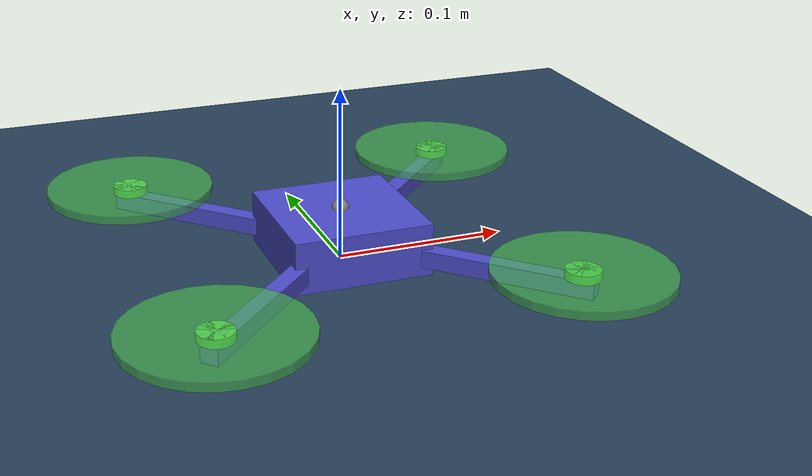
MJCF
<mujoco model="Generic Quad">
    <compiler autolimits="false"/>
    <option integrator="implicitfast"/>
    <visual>
        <headlight diffuse="0.6 0.6 0.6" ambient="0.3 0.3 0.3" specular="0 0 0"/>
        <global azimuth="-20" elevation="-20" offwidth="1920" offheight="1080"/>
    </visual>
    <asset>
        <texture name="skybox" type="skybox" builtin="gradient" rgb1=".4 .6 .8" rgb2="0 0 0" width="800" height="800"
            mark="random" markrgb="1 1 1"/>
        <texture type="2d" name="groundplane" builtin="checker" mark="edge" rgb1="0.2 0.3 0.4" rgb2="0.1 0.2 0.3"
            markrgb="0.8 0.8 0.8" width="300" height="300"/>
        <material name="groundplane" texture="groundplane" texuniform="true" texrepeat="5 5" reflectance="0.2"/>
    </asset>

    <worldbody>
        <light pos="0 0 20" dir="0 0 -1" directional="false"/>
        <geom name="floor" size="0 0 0.05" type="plane" material="groundplane"/>
        <body name="quad" pos="0 0 0.01" quat="1 0 0 0">
            <inertial mass="0.792" diaginertia="0.0047 0.005 0.0074" pos="0 0 0"/>
            <joint name="root" type="free" damping="0" armature="0" pos="0 0 0" limited="false"/>

            <geom name="quad_geom" type="box" pos="0 0 0" quat="1 0 0 0" size=".04 .04 .02" rgba=".3 .3 .8 1"/>

            <geom name="arm_front_left" type="box" pos=".07 .07 0" size=".05 .005 .005" quat=".924 0 0 .383"
                rgba=".3 .3 .8 1"/>
            <geom name="arm_front_right" type="box" pos=".07 -.07 0" size=".05 .005 .005" quat=".383 0 0 .924"
                rgba=".3 .3 .8 1"/>
            <geom name="arm_back_right" type="box" pos="-.07 -.07 0" size=".05 .005 .005" quat="-.383 0 0 .924"
                rgba=".3 .3 .8 1"/>
            <geom name="arm_back_left" type="box" pos="-.07 .07 0" size=".05 .005 .005" quat=".924 0 0 -.383"
                rgba=".3 .3 .8 1"/>

            <site name="motor_front_left" type="cylinder" pos=".1 .1 .0075" size=".01 .0025" quat="1 0 0 0"
                rgba=".3 .8 .3 1"/>
            <site name="motor_front_right" type="cylinder" pos=".1 -.1 .0075" size=".01 .0025" quat="1 0 0 0"
                rgba=".3 .8 .3 1"/>
            <site name="motor_back_right" type="cylinder" pos="-.1 -.1 .0075" size=".01 .0025" quat="1 0 0 0"
                rgba=".3 .8 .3 1"/>
            <site name="motor_back_left" type="cylinder" pos="-.1  .1 .0075" size=".01 .0025" quat="1 0 0 0"
                rgba=".3 .8 .3 1"/>
            <site name="thrust_com" type="cylinder" pos="0 0 0" quat="1 0 0 0"/>
            <site name="imu" pos="0 0 .02"/>

            <geom name="thruster_front_left" type="cylinder" pos=".1 .1 .0075" size=".05 .0025" quat="1 0 0 0"
                rgba=".3 .8 .3 0.6"/>
            <geom name="thruster_front_right" type="cylinder" pos=".1 -.1 .0075" size=".05 .0025" quat="1 0 0 0"
                rgba=".3 .8 .3 0.6"/>
            <geom name="thruster_back_right" type="cylinder" pos="-.1 -.1 .0075" size=".05 .0025" quat="1 0 0 0"
                rgba=".3 .8 .3 0.6"/>
            <geom name="thruster_back_left" type="cylinder" pos="-.1 .1 .0075" size=".05 .0025" quat="1 0 0 0"
                rgba=".3 .8 .3 0.6"/>

            <camera name="visual" pos="0 0 -0.05" euler="90 -90 0" mode="fixed"/>
        </body>
        <camera name="fixed" pos="1.408 1.648 1.415" xyaxes="-0.760 0.649 0.000 -0.337 -0.394 0.855"
            resolution="1920 1080" mode="fixed"/>
        <camera name="trackcom" pos="1.408 1.648 1.415" xyaxes="-0.760 0.649 0.000 -0.337 -0.394 0.855"
            resolution="1920 1080" mode="trackcom"/>

    </worldbody>

    <actuator>
        <velocity gear="0 0 1 0 0 0" site="thrust_com" name="body_thrust"/>
        <velocity gear="0 0 0 -1 0 0" site="thrust_com" name="x_moment"/>
        <velocity gear="0 0 0 0 -1 0" site="thrust_com" name="y_moment"/>
        <velocity gear="0 0 0 0 0 -1" site="thrust_com" name="z_moment"/>
    </actuator>

    <sensor>
        <gyro name="body_gyro" site="imu"/>
        <accelerometer name="body_accl" site="imu"/>
        <framequat name="body_quat" objtype="site" objname="imu"/>
    </sensor>

    <keyframe>
        <key name="hover" qpos="0 0 1 1 0 0 0" ctrl="2.9430 0 0 0"/>
    </keyframe>
</mujoco>
